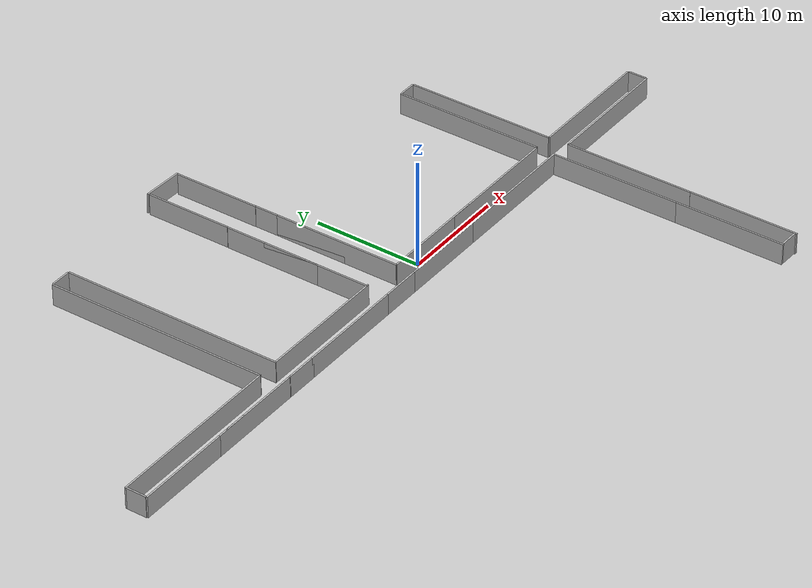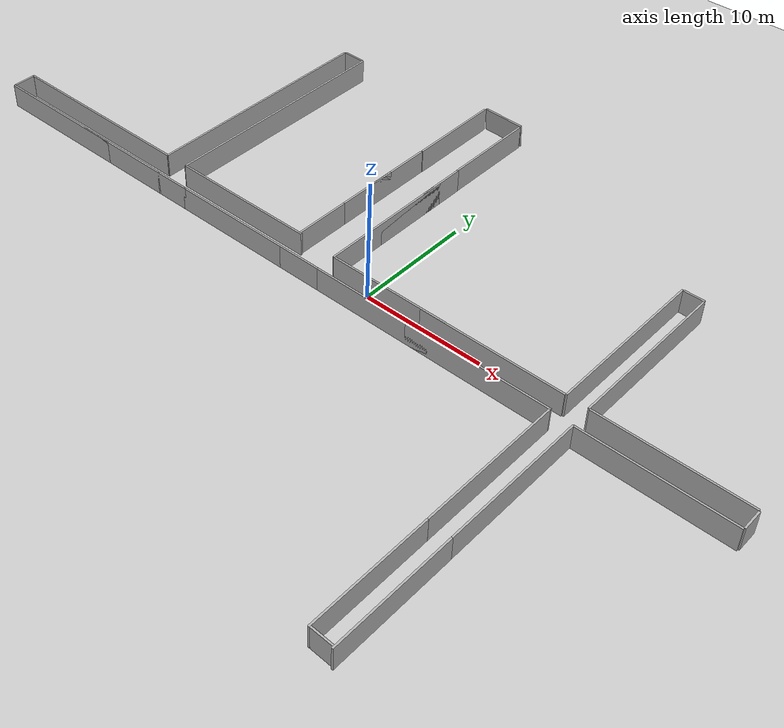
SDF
<sdf version="1.7">
 <world name="hallway_world">
  <physics type="ode">
   <max_step_size>0.001</max_step_size>
   <real_time_factor>1</real_time_factor>
   <real_time_update_rate>1000</real_time_update_rate>
  </physics>
  <light name="sun" type="directional">
   <pose>0 0 10 0 -0 0</pose>
   <diffuse>0.8 0.8 0.8 1</diffuse>
   <specular>0.2 0.2 0.2 1</specular>
   <attenuation>
    <range>1000</range>
    <constant>0.9</constant>
    <linear>0.01</linear>
    <quadratic>0.001</quadratic>
   </attenuation>
   <direction>-0.5 0.1 -0.9</direction>
   <spot><inner_angle>0</inner_angle><outer_angle>0</outer_angle><falloff>0</falloff></spot>
  </light>
  <model name="ground_plane">
   <static>1</static>
   <link name="link">
    <collision name="collision">
     <geometry><plane><normal>0 0 1</normal><size>100 100</size></plane></geometry>
     <surface><friction><ode><mu>100</mu><mu2>50</mu2></ode></friction></surface>
    </collision>
    <visual name="visual">
     <cast_shadows>0</cast_shadows>
     <geometry><plane><normal>0 0 1</normal><size>100 100</size></plane></geometry>
     <material>
      <script><uri>file://media/materials/scripts/gazebo.material</uri><name>Gazebo/Grey</name></script>
     </material>
    </visual>
   </link>
  </model>
  <scene><ambient>0.4 0.4 0.4 1</ambient><background>0.7 0.7 0.7 1</background><shadows>1</shadows></scene>
  <model name="straight_x_right_2">
   <static>1</static>
   <pose>-22.7931 -1.825 1 0 -0 0</pose>
   <link name="link">
    <collision name="collision"><geometry><box><size>12 0.15 2</size></box></geometry></collision>
    <visual name="visual">
     <geometry><box><size>12 0.15 2</size></box></geometry>
     <material><ambient>0.7 0.7 0.7 1</ambient><diffuse>0.7 0.7 0.7 1</diffuse></material>
    </visual>
   </link>
  </model>
  <model name="straight_x_right_4">
   <static>1</static>
   <pose>-31.7637 -1.825 1 0 -0 0</pose>
   <link name="link">
    <collision name="collision"><geometry><box><size>12 0.15 2</size></box></geometry></collision>
    <visual name="visual">
     <geometry><box><size>12 0.15 2</size></box></geometry>
     <material><ambient>0.7 0.7 0.7 1</ambient><diffuse>0.7 0.7 0.7 1</diffuse></material>
    </visual>
   </link>
  </model>
  <model name="straight_y_left_5">
   <static>1</static>
   <pose>-21.0124 10.4208 1 0 -0 0</pose>
   <link name="link">
    <collision name="collision"><geometry><box><size>0.15 20.598 2</size></box></geometry></collision>
    <visual name="visual">
     <geometry><box><size>0.15 20.598 2</size></box></geometry>
     <material><ambient>0.7 0.7 0.7 1</ambient><diffuse>0.7 0.7 0.7 1</diffuse></material>
    </visual>
   </link>
  </model>
  <model name="l_inner_7">
   <static>1</static>
   <pose>-19.825 -1.825 1 0 -0 0</pose>
   <link name="link">
    <collision name="collision"><geometry><box><size>0.15 0.15 2</size></box></geometry></collision>
    <visual name="visual">
     <geometry><box><size>0.15 0.15 2</size></box></geometry>
     <material><ambient>0.7 0.7 0.7 1</ambient><diffuse>0.7 0.7 0.7 1</diffuse></material>
    </visual>
   </link>
  </model>
  <model name="straight_x_left_8">
   <static>1</static>
   <pose>-12.8174 0.187363 1 0 -0 0</pose>
   <link name="link">
    <collision name="collision"><geometry><box><size>12.3566 0.15 2</size></box></geometry></collision>
    <visual name="visual">
     <geometry><box><size>12.3566 0.15 2</size></box></geometry>
     <material><ambient>0.7 0.7 0.7 1</ambient><diffuse>0.7 0.7 0.7 1</diffuse></material>
    </visual>
   </link>
  </model>
  <model name="straight_x_right_9">
   <static>1</static>
   <pose>-11.9125 -1.825 1 0 -0 0</pose>
   <link name="link">
    <collision name="collision"><geometry><box><size>10.175 0.15 2</size></box></geometry></collision>
    <visual name="visual">
     <geometry><box><size>10.175 0.15 2</size></box></geometry>
     <material><ambient>0.7 0.7 0.7 1</ambient><diffuse>0.7 0.7 0.7 1</diffuse></material>
    </visual>
   </link>
  </model>
  <model name="straight_x_left_10">
   <static>1</static>
   <pose>1.9125 -0.103109 1 0 -0 0</pose>
   <link name="link">
    <collision name="collision"><geometry><box><size>10.175 0.15 2</size></box></geometry></collision>
    <visual name="visual">
     <geometry><box><size>10.175 0.15 2</size></box></geometry>
     <material><ambient>0.7 0.7 0.7 1</ambient><diffuse>0.7 0.7 0.7 1</diffuse></material>
    </visual>
   </link>
  </model>
  <model name="straight_x_right_11">
   <static>1</static>
   <pose>1.9125 -1.825 1 0 -0 0</pose>
   <link name="link">
    <collision name="collision"><geometry><box><size>10.175 0.15 2</size></box></geometry></collision>
    <visual name="visual">
     <geometry><box><size>10.175 0.15 2</size></box></geometry>
     <material><ambient>0.7 0.7 0.7 1</ambient><diffuse>0.7 0.7 0.7 1</diffuse></material>
    </visual>
   </link>
  </model>
  <model name="t_main_right_12">
   <static>1</static>
   <pose>-5 -1.825 1 0 -0 0</pose>
   <link name="link">
    <collision name="collision"><geometry><box><size>3.65 0.15 2</size></box></geometry></collision>
    <visual name="visual">
     <geometry><box><size>3.65 0.15 2</size></box></geometry>
     <material><ambient>0.7 0.7 0.7 1</ambient><diffuse>0.7 0.7 0.7 1</diffuse></material>
    </visual>
   </link>
  </model>
  <model name="straight_y_left_13">
   <static>1</static>
   <pose>-6.825 5.21501 1 0 -0 0</pose>
   <link name="link">
    <collision name="collision"><geometry><box><size>0.15 10.175 2</size></box></geometry></collision>
    <visual name="visual">
     <geometry><box><size>0.15 10.175 2</size></box></geometry>
     <material><ambient>0.7 0.7 0.7 1</ambient><diffuse>0.7 0.7 0.7 1</diffuse></material>
    </visual>
   </link>
  </model>
  <model name="straight_y_right_14">
   <static>1</static>
   <pose>-3.175 5.80722 1 0 -0 0</pose>
   <link name="link">
    <collision name="collision"><geometry><box><size>0.15 11.8632 2</size></box></geometry></collision>
    <visual name="visual">
     <geometry><box><size>0.15 11.8632 2</size></box></geometry>
     <material><ambient>0.7 0.7 0.7 1</ambient><diffuse>0.7 0.7 0.7 1</diffuse></material>
    </visual>
   </link>
  </model>
  <model name="straight_x_left_15">
   <static>1</static>
   <pose>10.8909 -0.123061 1 0 -0 0</pose>
   <link name="link">
    <collision name="collision"><geometry><box><size>12 0.15 2</size></box></geometry></collision>
    <visual name="visual">
     <geometry><box><size>12 0.15 2</size></box></geometry>
     <material><ambient>0.7 0.7 0.7 1</ambient><diffuse>0.7 0.7 0.7 1</diffuse></material>
    </visual>
   </link>
  </model>
  <model name="straight_x_right_16">
   <static>1</static>
   <pose>11 -1.825 1 0 -0 0</pose>
   <link name="link">
    <collision name="collision"><geometry><box><size>12 0.15 2</size></box></geometry></collision>
    <visual name="visual">
     <geometry><box><size>12 0.15 2</size></box></geometry>
     <material><ambient>0.7 0.7 0.7 1</ambient><diffuse>0.7 0.7 0.7 1</diffuse></material>
    </visual>
   </link>
  </model>
  <model name="straight_y_left_17">
   <static>1</static>
   <pose>16.935 -7.88054 1 0 -0 0</pose>
   <link name="link">
    <collision name="collision"><geometry><box><size>0.15 12 2</size></box></geometry></collision>
    <visual name="visual">
     <geometry><box><size>0.15 12 2</size></box></geometry>
     <material><ambient>0.7 0.7 0.7 1</ambient><diffuse>0.7 0.7 0.7 1</diffuse></material>
    </visual>
   </link>
  </model>
  <model name="straight_y_right_18">
   <static>1</static>
   <pose>18.7047 6.74476 1 0 -0 0</pose>
   <link name="link">
    <collision name="collision"><geometry><box><size>0.15 13.7495 2</size></box></geometry></collision>
    <visual name="visual">
     <geometry><box><size>0.15 13.7495 2</size></box></geometry>
     <material><ambient>0.7 0.7 0.7 1</ambient><diffuse>0.7 0.7 0.7 1</diffuse></material>
    </visual>
   </link>
  </model>
  <model name="straight_y_left_19">
   <static>1</static>
   <pose>16.9586 6.80836 1 0 -0 0</pose>
   <link name="link">
    <collision name="collision"><geometry><box><size>0.15 13.8252 2</size></box></geometry></collision>
    <visual name="visual">
     <geometry><box><size>0.15 13.8252 2</size></box></geometry>
     <material><ambient>0.7 0.7 0.7 1</ambient><diffuse>0.7 0.7 0.7 1</diffuse></material>
    </visual>
   </link>
  </model>
  <model name="straight_y_right_20">
   <static>1</static>
   <pose>18.8243 -7.98208 1 0 -0 0</pose>
   <link name="link">
    <collision name="collision"><geometry><box><size>0.15 12 2</size></box></geometry></collision>
    <visual name="visual">
     <geometry><box><size>0.15 12 2</size></box></geometry>
     <material><ambient>0.7 0.7 0.7 1</ambient><diffuse>0.7 0.7 0.7 1</diffuse></material>
    </visual>
   </link>
  </model>
  <model name="straight_x_left_21">
   <static>1</static>
   <pose>24.7858 -0.148522 1 0 -0 0</pose>
   <link name="link">
    <collision name="collision"><geometry><box><size>12 0.15 2</size></box></geometry></collision>
    <visual name="visual">
     <geometry><box><size>12 0.15 2</size></box></geometry>
     <material><ambient>0.7 0.7 0.7 1</ambient><diffuse>0.7 0.7 0.7 1</diffuse></material>
    </visual>
   </link>
  </model>
  <model name="straight_x_right_22">
   <static>1</static>
   <pose>24.8084 -2.00859 1 0 -0 0</pose>
   <link name="link">
    <collision name="collision"><geometry><box><size>12 0.15 2</size></box></geometry></collision>
    <visual name="visual">
     <geometry><box><size>12 0.15 2</size></box></geometry>
     <material><ambient>0.7 0.7 0.7 1</ambient><diffuse>0.7 0.7 0.7 1</diffuse></material>
    </visual>
   </link>
  </model>
  <model name="straight_x_right_24">
   <static>1</static>
   <pose>17.877 13.6931 1 0 -0 0</pose>
   <link name="link">
    <collision name="collision"><geometry><box><size>1.70513 0.15 2</size></box></geometry></collision>
    <visual name="visual">
     <geometry><box><size>1.70513 0.15 2</size></box></geometry>
     <material><ambient>0.7 0.7 0.7 1</ambient><diffuse>0.7 0.7 0.7 1</diffuse></material>
    </visual>
   </link>
  </model>
  <model name="dead_end_cap_25">
   <static>1</static>
   <pose>30.8278 -1.08454 1 0 -0 0</pose>
   <link name="link">
    <collision name="collision"><geometry><box><size>0.15 1.69407 2</size></box></geometry></collision>
    <visual name="visual">
     <geometry><box><size>0.15 1.69407 2</size></box></geometry>
     <material><ambient>0.7 0.7 0.7 1</ambient><diffuse>0.7 0.7 0.7 1</diffuse></material>
    </visual>
   </link>
  </model>
  <model name="straight_y_right_27">
   <static>1</static>
   <pose>-37.7484 -0.833733 1 0 -0 0</pose>
   <link name="link">
    <collision name="collision"><geometry><box><size>0.15 1.85521 2</size></box></geometry></collision>
    <visual name="visual">
     <geometry><box><size>0.15 1.85521 2</size></box></geometry>
     <material><ambient>0.7 0.7 0.7 1</ambient><diffuse>0.7 0.7 0.7 1</diffuse></material>
    </visual>
   </link>
  </model>
  <model name="straight_y_left_28">
   <static>1</static>
   <pose>17.8747 -23.9405 1 0 -0 1.54564</pose>
   <link name="link">
    <collision name="collision"><geometry><box><size>0.15 1.73467 2</size></box></geometry></collision>
    <visual name="visual">
     <geometry><box><size>0.15 1.73467 2</size></box></geometry>
     <material><ambient>0.7 0.7 0.7 1</ambient><diffuse>0.7 0.7 0.7 1</diffuse></material>
    </visual>
   </link>
  </model>
  <model name="t_main_left_30">
   <static>1</static>
   <pose>-4.94297 22.176 1 -3.11506 0.077624 -1.63727</pose>
   <link name="link">
    <collision name="collision"><geometry><box><size>0.15 3.65 2</size></box></geometry></collision>
    <visual name="visual">
     <geometry><box><size>0.15 3.65 2</size></box></geometry>
     <material><ambient>0.7 0.7 0.7 1</ambient><diffuse>0.7 0.7 0.7 1</diffuse></material>
    </visual>
   </link>
  </model>
  <model name="straight_x_right_32">
   <static>1</static>
   <pose>16.9302 -18.9161 1 0 0 -1.5716</pose>
   <link name="link">
    <collision name="collision"><geometry><box><size>10.175 0.15 2</size></box></geometry></collision>
    <visual name="visual">
     <geometry><box><size>10.175 0.15 2</size></box></geometry>
     <material><ambient>0.7 0.7 0.7 1</ambient><diffuse>0.7 0.7 0.7 1</diffuse></material>
    </visual>
   </link>
  </model>
  <model name="straight_y_left_33">
   <static>1</static>
   <pose>-6.825 9.5 1 0 -0 0</pose>
   <link name="link">
    <collision name="collision"><geometry><box><size>0.15 9 2</size></box></geometry></collision>
    <visual name="visual">
     <geometry><box><size>0.15 9 2</size></box></geometry>
     <material><ambient>0.7 0.7 0.7 1</ambient><diffuse>0.7 0.7 0.7 1</diffuse></material>
    </visual>
   </link>
  </model>
  <model name="straight_y_right_34">
   <static>1</static>
   <pose>-3.175 9.5 1 0 -0 0</pose>
   <link name="link">
    <collision name="collision"><geometry><box><size>0.15 9 2</size></box></geometry></collision>
    <visual name="visual">
     <geometry><box><size>0.15 9 2</size></box></geometry>
     <material><ambient>0.7 0.7 0.7 1</ambient><diffuse>0.7 0.7 0.7 1</diffuse></material>
    </visual>
   </link>
  </model>
  <model name="dead_end_cap_35">
   <static>1</static>
   <pose>-19.9934 20.7393 1 0 -0 0</pose>
   <link name="link">
    <collision name="collision"><geometry><box><size>1.88241 0.15 2</size></box></geometry></collision>
    <visual name="visual">
     <geometry><box><size>1.88241 0.15 2</size></box></geometry>
     <material><ambient>0.7 0.7 0.7 1</ambient><diffuse>0.7 0.7 0.7 1</diffuse></material>
    </visual>
   </link>
  </model>
  <model name="straight_y_left_38">
   <static>1</static>
   <pose>-6.8026 18.0397 1 0 -0 0</pose>
   <link name="link">
    <collision name="collision"><geometry><box><size>0.15 8 2</size></box></geometry></collision>
    <visual name="visual">
     <geometry><box><size>0.15 8 2</size></box></geometry>
     <material><ambient>0.7 0.7 0.7 1</ambient><diffuse>0.7 0.7 0.7 1</diffuse></material>
    </visual>
   </link>
  </model>
  <model name="straight_y_right_39">
   <static>1</static>
   <pose>-3.19475 17.8986 1 0 -0 0</pose>
   <link name="link">
    <collision name="collision"><geometry><box><size>0.15 8 2</size></box></geometry></collision>
    <visual name="visual">
     <geometry><box><size>0.15 8 2</size></box></geometry>
     <material><ambient>0.7 0.7 0.7 1</ambient><diffuse>0.7 0.7 0.7 1</diffuse></material>
    </visual>
   </link>
  </model>
  <gravity>0 0 -9.8</gravity>
  <magnetic_field>6e-06 2.3e-05 -4.2e-05</magnetic_field>
  <atmosphere type="adiabatic"/>
  <audio><device>default</device></audio>
  <spherical_coordinates>
   <surface_model>EARTH_WGS84</surface_model>
   <latitude_deg>0</latitude_deg>
   <longitude_deg>0</longitude_deg>
   <elevation>0</elevation>
   <heading_deg>0</heading_deg>
  </spherical_coordinates>
  <model name="straight_x_right_32_clone">
   <static>1</static>
   <pose>18.8265 -19.0605 1 0 0 -1.5716</pose>
   <link name="link">
    <collision name="collision"><geometry><box><size>10.175 0.15 2</size></box></geometry></collision>
    <visual name="visual">
     <geometry><box><size>10.175 0.15 2</size></box></geometry>
     <material><ambient>0.7 0.7 0.7 1</ambient><diffuse>0.7 0.7 0.7 1</diffuse></material>
    </visual>
   </link>
  </model>
  <model name="straight_x_right_4_clone">
   <static>1</static>
   <pose>-29.419 0.165069 1 0 -0 0</pose>
   <link name="link">
    <collision name="collision"><geometry><box><size>16.7778 0.15 2</size></box></geometry></collision>
    <visual name="visual">
     <geometry><box><size>16.7778 0.15 2</size></box></geometry>
     <material><ambient>0.7 0.7 0.7 1</ambient><diffuse>0.7 0.7 0.7 1</diffuse></material>
    </visual>
   </link>
  </model>
  <model name="straight_y_left_5_clone">
   <static>1</static>
   <pose>-18.976 10.4163 1 0 -0 0</pose>
   <link name="link">
    <collision name="collision"><geometry><box><size>0.15 20.598 2</size></box></geometry></collision>
    <visual name="visual">
     <geometry><box><size>0.15 20.598 2</size></box></geometry>
     <material><ambient>0.7 0.7 0.7 1</ambient><diffuse>0.7 0.7 0.7 1</diffuse></material>
    </visual>
   </link>
  </model>
  <plugin name="gazebo_ros_state" filename="libgazebo_ros_state.so">
   <ros><namespace>/</namespace></ros>
   <update_rate>1.0</update_rate>
  </plugin>
 </world>
</sdf>
